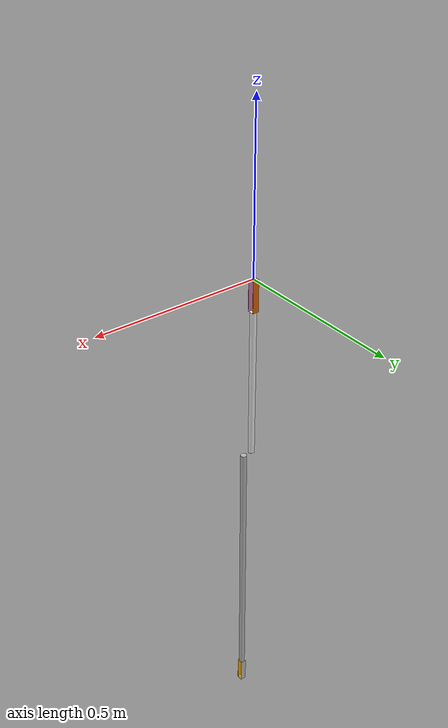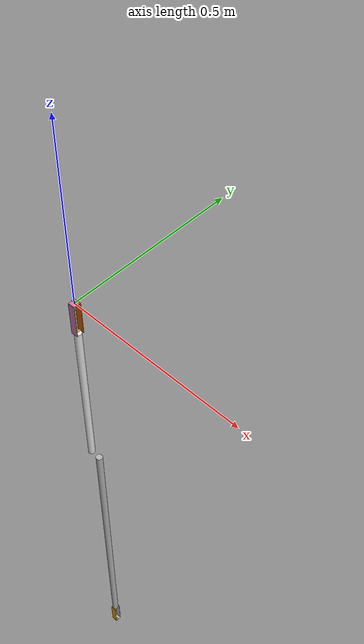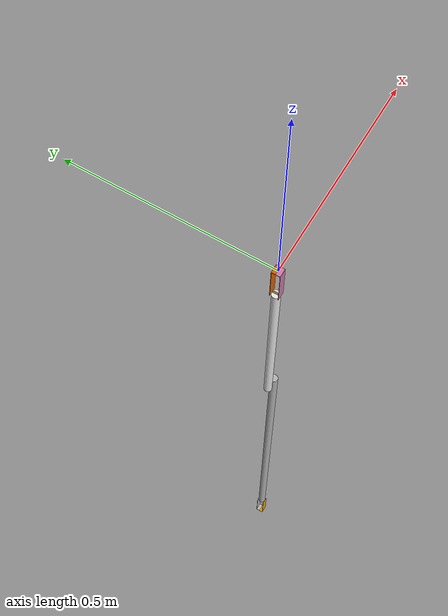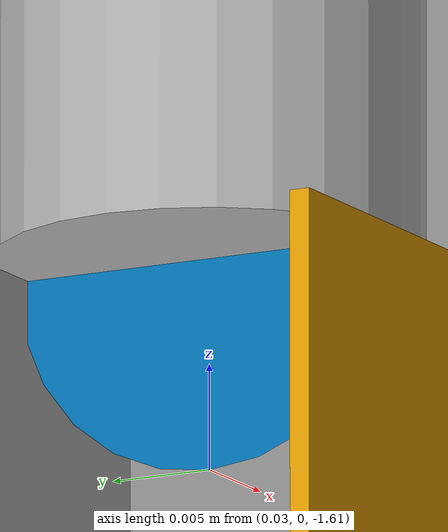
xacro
<?xml version='1.0'?>
<robot xmlns:xacro="http://www.ros.org/wiki/xacro" name='gibbon'>

    <xacro:property name="arm_radius" value="0.01" />
    <xacro:property name="arm_len" value="1" />
    <xacro:property name="arm_mass" value="2.0" />
    <xacro:property name="width" value="0.2" />
    <xacro:property name="polelen" value="0.0" />

    <material name="grey1"><color rgba="0.7 0.7 0.7 1"/></material>
    <material name="grey2"><color rgba="0.9 0.9 0.9 1"/></material>

    <xacro:macro name="default_inertial" params="mass">
      <inertial>
        <mass value="${mass}" />
        <inertia ixx="1.0" ixy="0.0" ixz="0.0" iyy="1.0" iyz="0.0" izz="1.0" />
      </inertial>
    </xacro:macro>

    <xacro:macro name="arm_inertial" params="mass len">
      <inertial>
        <mass value="${mass}" />
        <inertia ixx="${1.0 / 3.0 * mass * len * len}" ixy="0.0" ixz="0.0" iyy="0" iyz="0.0" izz="0.0" />
      </inertial>
    </xacro:macro>

    <link name="base_link"/>
    <joint name="base_link__link_1" type="fixed">
      <parent link="base_link"/>
      <child link="link_1"/>
      <origin rpy="0 0 0" xyz="0 0 -0.1"/>
    </joint>

    <link name='link_1'>
      <visual>
        <origin rpy="0 0 0" xyz="0 0 -${arm_len/4}"/>
        <material name="grey2"/>
        <geometry>
          <cylinder radius="${arm_radius}" length="${arm_len/2}"/>
        </geometry>
      </visual>
      <collision>
        <origin rpy="0 0 0" xyz="0 0 -${arm_len/4}"/>
        <geometry>
          <cylinder radius="${arm_radius}" length="${arm_len/2}"/>
        </geometry>
      </collision>
      <xacro:arm_inertial mass="${arm_mass/2}" len="${arm_len/2}"/>
    </link>

    <link name='link_2'>
      <visual>
        <origin rpy="0 0 0" xyz="${arm_radius*2} 0 -${arm_len/2}"/>
        <material name="grey1"/>
        <geometry>
          <cylinder radius="${arm_radius}" length="${arm_len}"/>
        </geometry>
      </visual>
      <collision>
        <origin rpy="0 0 0" xyz="${arm_radius*2} 0 -${arm_len/2}"/>
        <geometry>
          <cylinder radius="${arm_radius}" length="${arm_len}"/>
        </geometry>
      </collision>
      <xacro:arm_inertial mass="${arm_mass}" len="${arm_len}"/>
    </link>

    <joint name="link_1__link_2" type="revolute">
      <parent link="link_1"/>
      <child link="link_2"/>
      <limit effort="1000.0" lower="${-pi}" upper="${pi}" velocity="1000.0"/>
      <origin rpy="0 0 0" xyz="${arm_radius} 0 -${arm_len/2}"/>
      <dynamics friction="0" damping="0.001"/>
    </joint>
    <transmission name="link_1__link_2_trans">
      <type>transmission_interface/SimpleTransmission</type>
      <actuator name="$link_1__link_2_motor">
        <hardwareInterface>hardware_interface/EffortJointInterface</hardwareInterface>
        <mechanicalReduction>1</mechanicalReduction>
      </actuator>
      <joint name="link_1__link_2">
        <hardwareInterface>hardware_interface/EffortJointInterface</hardwareInterface>
      </joint>
    </transmission>

    <joint name="link_1__gripper" type="fixed">
      <parent link="link_1"/>
      <child link="link_1_gripper_pole"/>
      <origin rpy="0 -${pi/2} 0" xyz="0 0 0"/>
    </joint>

    <joint name="link_2__gripper" type="fixed">
      <parent link="link_2"/>
      <child link="link_2_gripper_pole"/>
      <origin rpy="0 ${pi/2} 0" xyz="${arm_radius*2} 0 -${arm_len}"/>
    </joint>

    <link name="link_1_gripper_pole">
      <visual>
        <geometry>
          <cylinder length="${polelen}" radius="0.01"/>
        </geometry>
        <origin xyz="0 0 0" rpy="0 0 0 "/>
      </visual>
      <collision>
        <geometry>
          <cylinder length="${polelen}" radius="0.01"/>
        </geometry>
        <origin xyz="0 0 0" rpy="0 0 0 "/>
      </collision>
      <xacro:default_inertial mass="0.001"/>
    </link>

    <link name="link_2_gripper_pole">
      <visual>
        <geometry>
          <cylinder length="${polelen}" radius="0.01"/>
        </geometry>
        <origin xyz="0 0 0" rpy="0 0 0 "/>
      </visual>
      <collision>
        <geometry>
          <cylinder length="${polelen}" radius="0.01"/>
        </geometry>
        <origin xyz="0 0 0" rpy="0 0 0 "/>
      </collision>
      <xacro:default_inertial mass="0.001"/>
    </link>

    <xacro:macro name="gripper" params="prefix reflect link_name">
      <joint name="${link_name}_${prefix}_gripper_joint" type="revolute">
        <axis xyz="0 0 ${reflect}"/>
        <limit effort="100000.0" lower="0.0" upper="1.548" velocity="3.14"/>
        <origin rpy="0 0 0" xyz="${polelen} ${reflect*0.01} 0"/>
        <parent link="${link_name}_gripper_pole"/>
        <child link="${link_name}_${prefix}_gripper"/>
      </joint>
      <transmission name="${link_name}_${prefix}_gripper_joint_trans">
        <type>transmission_interface/SimpleTransmission</type>
        <actuator name="$${link_name}_${prefix}_gripper_joint_motor">
          <hardwareInterface>hardware_interface/PositionJointInterface</hardwareInterface>
          <mechanicalReduction>1</mechanicalReduction>
        </actuator>
        <joint name="${link_name}_${prefix}_gripper_joint">
          <hardwareInterface>hardware_interface/PositionJointInterface</hardwareInterface>
        </joint>
      </transmission>
      <link name="${link_name}_${prefix}_gripper">
        <visual>
          <origin rpy="${reflect*pi/2} 0 ${reflect*pi/2}" xyz="0.05 0 0"/>
          <geometry>
            <box size="0.001 0.02 0.1"/>
          </geometry>
        </visual>
        <collision>
          <geometry>
            <box size="0.001 0.02 0.1"/>
          </geometry>
          <origin rpy="${reflect*pi/2} 0 ${reflect*pi/2}" xyz="0.05 0 0"/>
        </collision>
        <visual>
          <origin rpy="0 0 0" xyz="0.1 ${-1*reflect*0.005} 0"/>
          <geometry>
            <box size="0.001 0.01 0.02"/>
          </geometry>
        </visual>
        <collision>
          <geometry>
            <box size="0.001 0.01 0.02"/>
          </geometry>
          <origin rpy="0 0 0" xyz="0.1 ${-1*reflect*0.005} 0"/>
        </collision>
        <xacro:default_inertial mass="0.05"/>
      </link>
    </xacro:macro>

    <xacro:gripper prefix="left" reflect="1" link_name="link_1" />
    <xacro:gripper prefix="right" reflect="-1" link_name="link_1" />
    <xacro:gripper prefix="left" reflect="1" link_name="link_2" />
    <xacro:gripper prefix="right" reflect="-1" link_name="link_2" />

    <gazebo>
      <plugin name="gazebo_ros_control" filename="libgazebo_ros_control.so">
        <robotNamespace>/gibbon</robotNamespace>
      </plugin>
    </gazebo>
</robot>
